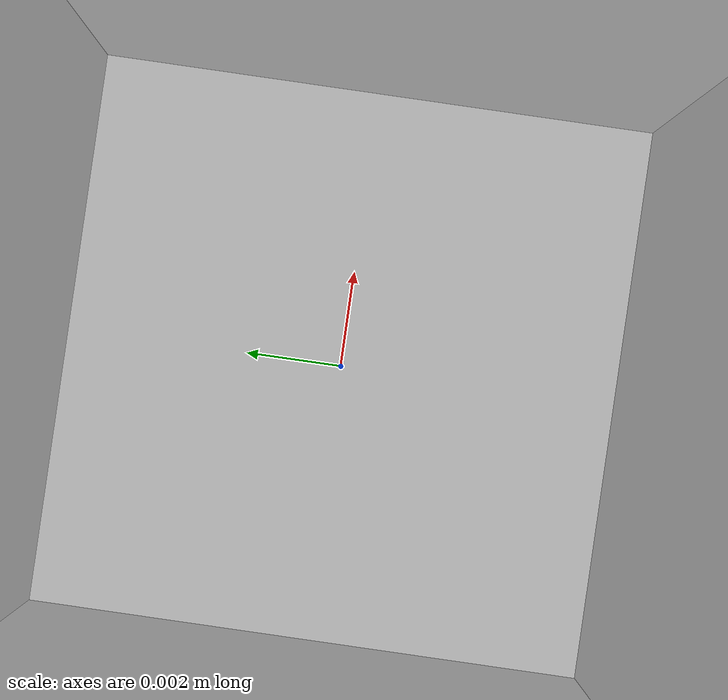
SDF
<?xml version="1.0" ?>
<sdf version="1.7">
  <world name="maze">
    <gravity>0 0 -9.81</gravity>
    <scene>
      <ambient>0.4 0.4 0.4 1</ambient>
      <background>0.7 0.7 0.7 1</background>
    </scene>
    <model name="maze_floor">
      <static>true</static>
      <link name="floor">
        <collision name="collision">
          <geometry>
            <box><size>10 10 0.1</size></box>
          </geometry>
        </collision>
        <visual name="visual">
          <geometry>
            <box><size>10 10 0.1</size></box>
          </geometry>
          <material><diffuse>0.75 0.75 0.75 1</diffuse></material>
        </visual>
      </link>
    </model>
    <model name="maze_walls">
      <static>true</static>
      <link name="walls">
        <collision name="outer_wall_n"><pose>0 4.5 0.5 0 0 0</pose><geometry><box><size>10 0.1 1</size></box></geometry></collision>
        <collision name="outer_wall_s"><pose>0 -4.5 0.5 0 0 0</pose><geometry><box><size>10 0.1 1</size></box></geometry></collision>
        <collision name="outer_wall_e"><pose>4.5 0 0.5 0 0 0</pose><geometry><box><size>0.1 10 1</size></box></geometry></collision>
        <collision name="outer_wall_w"><pose>-4.5 0 0.5 0 0 0</pose><geometry><box><size>0.1 10 1</size></box></geometry></collision>
        <visual name="wall_visual">
          <geometry><box><size>0.01 0.01 0.01</size></box></geometry>
          <material><diffuse>0.8 0.8 0.8 1</diffuse></material>
        </visual>
      </link>
    </model>
  </world>
</sdf>
